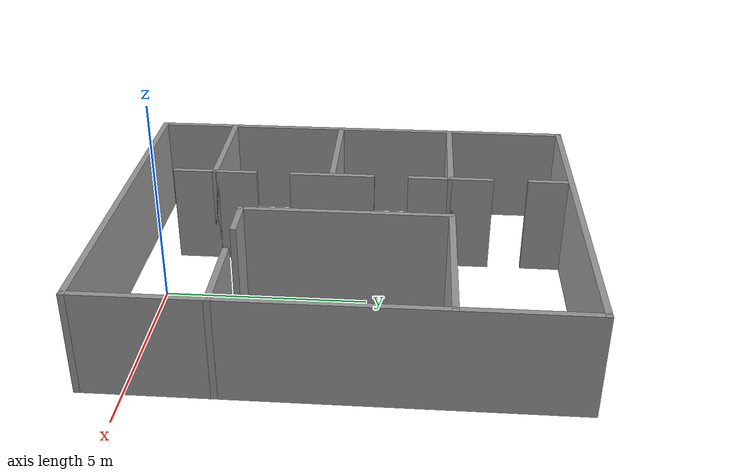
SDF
<?xml version='1.0'?>
<sdf version='1.7'>
  <model name='myRoom'>
    <pose>-0.5 4.5 0 0 -0 0</pose>
    <link name='Wall_0'>
      <collision name='Wall_0_Collision'>
        <geometry>
          <box>
            <size>11.15 0.15 2.5</size>
          </box>
        </geometry>
        <pose>0 0 1.25 0 -0 0</pose>
      </collision>
      <visual name='Wall_0_Visual'>
        <pose>0 0 1.25 0 -0 0</pose>
        <geometry>
          <box>
            <size>11.15 0.15 2.5</size>
          </box>
        </geometry>
        <material>
          <script>
            <uri>file://media/materials/scripts/gazebo.material</uri>
            <name>Gazebo/Grey</name>
          </script>
          <ambient>1 1 1 1</ambient>
        </material>
        <meta>
          <layer>0</layer>
        </meta>
      </visual>
      <pose>-4.5 -0 0 0 -0 1.5708</pose>
    </link>
    <link name='Wall_15'>
      <collision name='Wall_15_Collision'>
        <geometry>
          <box>
            <size>5.15 0.15 2.5</size>
          </box>
        </geometry>
        <pose>0 0 1.25 0 -0 0</pose>
      </collision>
      <visual name='Wall_15_Visual'>
        <pose>0 0 1.25 0 -0 0</pose>
        <geometry>
          <box>
            <size>5.15 0.15 2.5</size>
          </box>
        </geometry>
        <material>
          <script>
            <uri>file://media/materials/scripts/gazebo.material</uri>
            <name>Gazebo/Grey</name>
          </script>
          <ambient>1 1 1 1</ambient>
        </material>
        <meta>
          <layer>0</layer>
        </meta>
      </visual>
      <pose>0.5 -0 0 0 -0 -1.5708</pose>
    </link>
    <link name='Wall_17'>
      <collision name='Wall_17_Collision'>
        <geometry>
          <box>
            <size>1.15 0.15 2.5</size>
          </box>
        </geometry>
        <pose>0 0 1.25 0 -0 0</pose>
      </collision>
      <visual name='Wall_17_Visual'>
        <pose>0 0 1.25 0 -0 0</pose>
        <geometry>
          <box>
            <size>1.15 0.15 2.5</size>
          </box>
        </geometry>
        <material>
          <script>
            <uri>file://media/materials/scripts/gazebo.material</uri>
            <name>Gazebo/Grey</name>
          </script>
          <ambient>1 1 1 1</ambient>
        </material>
        <meta>
          <layer>0</layer>
        </meta>
      </visual>
      <pose>-1.5 5 0 0 -0 -1.5708</pose>
    </link>
    <link name='Wall_19'>
      <collision name='Wall_19_Collision'>
        <geometry>
          <box>
            <size>3.15 0.15 2.5</size>
          </box>
        </geometry>
        <pose>0 0 1.25 0 -0 0</pose>
      </collision>
      <visual name='Wall_19_Visual'>
        <pose>0 0 1.25 0 -0 0</pose>
        <geometry>
          <box>
            <size>3.15 0.15 2.5</size>
          </box>
        </geometry>
        <material>
          <script>
            <uri>file://media/materials/scripts/gazebo.material</uri>
            <name>Gazebo/Grey</name>
          </script>
          <ambient>1 1 1 1</ambient>
        </material>
        <meta>
          <layer>0</layer>
        </meta>
      </visual>
      <pose>-3 2.5 0 0 -0 0</pose>
    </link>
    <link name='Wall_2'>
      <collision name='Wall_2_Collision'>
        <geometry>
          <box>
            <size>9.15 0.15 2.5</size>
          </box>
        </geometry>
        <pose>0 0 1.25 0 -0 0</pose>
      </collision>
      <visual name='Wall_2_Visual'>
        <pose>0 0 1.25 0 -0 0</pose>
        <geometry>
          <box>
            <size>9.15 0.15 2.5</size>
          </box>
        </geometry>
        <material>
          <script>
            <uri>file://media/materials/scripts/gazebo.material</uri>
            <name>Gazebo/Grey</name>
          </script>
          <ambient>1 1 1 1</ambient>
        </material>
        <meta>
          <layer>0</layer>
        </meta>
      </visual>
      <pose>0 5.5 0 0 -0 0</pose>
    </link>
    <link name='Wall_21'>
      <collision name='Wall_21_Collision'>
        <geometry>
          <box>
            <size>1.15 0.15 2.5</size>
          </box>
        </geometry>
        <pose>0 0 1.25 0 -0 0</pose>
      </collision>
      <visual name='Wall_21_Visual'>
        <pose>0 0 1.25 0 -0 0</pose>
        <geometry>
          <box>
            <size>1.15 0.15 2.5</size>
          </box>
        </geometry>
        <material>
          <script>
            <uri>file://media/materials/scripts/gazebo.material</uri>
            <name>Gazebo/Grey</name>
          </script>
          <ambient>1 1 1 1</ambient>
        </material>
        <meta>
          <layer>0</layer>
        </meta>
      </visual>
      <pose>1 -2.5 0 0 -0 0</pose>
    </link>
    <link name='Wall_23'>
      <collision name='Wall_23_Collision'>
        <geometry>
          <box>
            <size>2.15 0.15 2.5</size>
          </box>
        </geometry>
        <pose>0 0 1.25 0 -0 0</pose>
      </collision>
      <visual name='Wall_23_Visual'>
        <pose>0 0 1.25 0 -0 0</pose>
        <geometry>
          <box>
            <size>2.15 0.15 2.5</size>
          </box>
        </geometry>
        <material>
          <script>
            <uri>file://media/materials/scripts/gazebo.material</uri>
            <name>Gazebo/Grey</name>
          </script>
          <ambient>1 1 1 1</ambient>
        </material>
        <meta>
          <layer>0</layer>
        </meta>
      </visual>
      <pose>3.5 -2.5 0 0 -0 3.14159</pose>
    </link>
    <link name='Wall_25'>
      <collision name='Wall_25_Collision'>
        <geometry>
          <box>
            <size>2.15 0.15 2.5</size>
          </box>
        </geometry>
        <pose>0 0 1.25 0 -0 0</pose>
      </collision>
      <visual name='Wall_25_Visual'>
        <pose>0 0 1.25 0 -0 0</pose>
        <geometry>
          <box>
            <size>2.15 0.15 2.5</size>
          </box>
        </geometry>
        <material>
          <script>
            <uri>file://media/materials/scripts/gazebo.material</uri>
            <name>Gazebo/Grey</name>
          </script>
          <ambient>1 1 1 1</ambient>
        </material>
        <meta>
          <layer>0</layer>
        </meta>
      </visual>
      <pose>-1.5 2.5 0 0 -0 -1.5708</pose>
    </link>
    <link name='Wall_27'>
      <collision name='Wall_27_Collision'>
        <geometry>
          <box>
            <size>3.15 0.15 2.5</size>
          </box>
        </geometry>
        <pose>0 0 1.25 0 -0 0</pose>
      </collision>
      <visual name='Wall_27_Visual'>
        <pose>0 0 1.25 0 -0 0</pose>
        <geometry>
          <box>
            <size>3.15 0.15 2.5</size>
          </box>
        </geometry>
        <material>
          <script>
            <uri>file://media/materials/scripts/gazebo.material</uri>
            <name>Gazebo/Grey</name>
          </script>
          <ambient>1 1 1 1</ambient>
        </material>
        <meta>
          <layer>0</layer>
        </meta>
      </visual>
      <pose>-3 -0.5 0 0 -0 0</pose>
    </link>
    <link name='Wall_29'>
      <collision name='Wall_29_Collision'>
        <geometry>
          <box>
            <size>2.15 0.15 2.5</size>
          </box>
        </geometry>
        <pose>0 0 1.25 0 -0 0</pose>
      </collision>
      <visual name='Wall_29_Visual'>
        <pose>0 0 1.25 0 -0 0</pose>
        <geometry>
          <box>
            <size>2.15 0.15 2.5</size>
          </box>
        </geometry>
        <material>
          <script>
            <uri>file://media/materials/scripts/gazebo.material</uri>
            <name>Gazebo/Grey</name>
          </script>
          <ambient>1 1 1 1</ambient>
        </material>
        <meta>
          <layer>0</layer>
        </meta>
      </visual>
      <pose>-1.5 -0.5 0 0 -0 -1.5708</pose>
    </link>
    <link name='Wall_31'>
      <collision name='Wall_31_Collision'>
        <geometry>
          <box>
            <size>3.15 0.15 2.5</size>
          </box>
        </geometry>
        <pose>0 0 1.25 0 -0 0</pose>
      </collision>
      <visual name='Wall_31_Visual'>
        <pose>0 0 1.25 0 -0 0</pose>
        <geometry>
          <box>
            <size>3.15 0.15 2.5</size>
          </box>
        </geometry>
        <material>
          <script>
            <uri>file://media/materials/scripts/gazebo.material</uri>
            <name>Gazebo/Grey</name>
          </script>
          <ambient>1 1 1 1</ambient>
        </material>
        <meta>
          <layer>0</layer>
        </meta>
      </visual>
      <pose>-3 -3.5 0 0 -0 0</pose>
    </link>
    <link name='Wall_33'>
      <collision name='Wall_33_Collision'>
        <geometry>
          <box>
            <size>2.15 0.15 2.5</size>
          </box>
        </geometry>
        <pose>0 0 1.25 0 -0 0</pose>
      </collision>
      <visual name='Wall_33_Visual'>
        <pose>0 0 1.25 0 -0 0</pose>
        <geometry>
          <box>
            <size>2.15 0.15 2.5</size>
          </box>
        </geometry>
        <material>
          <script>
            <uri>file://media/materials/scripts/gazebo.material</uri>
            <name>Gazebo/Grey</name>
          </script>
          <ambient>1 1 1 1</ambient>
        </material>
        <meta>
          <layer>0</layer>
        </meta>
      </visual>
      <pose>-1.5 -3.5 0 0 -0 -1.5708</pose>
    </link>
    <link name='Wall_4'>
      <collision name='Wall_4_Collision'>
        <geometry>
          <box>
            <size>11.15 0.15 2.5</size>
          </box>
        </geometry>
        <pose>0 0 1.25 0 -0 0</pose>
      </collision>
      <visual name='Wall_4_Visual'>
        <pose>0 0 1.25 0 -0 0</pose>
        <geometry>
          <box>
            <size>11.15 0.15 2.5</size>
          </box>
        </geometry>
        <material>
          <script>
            <uri>file://media/materials/scripts/gazebo.material</uri>
            <name>Gazebo/Grey</name>
          </script>
          <ambient>1 1 1 1</ambient>
        </material>
        <meta>
          <layer>0</layer>
        </meta>
      </visual>
      <pose>4.5 -0 0 0 -0 -1.5708</pose>
    </link>
    <link name='Wall_6'>
      <collision name='Wall_6_Collision'>
        <geometry>
          <box>
            <size>4.15 0.15 2.5</size>
          </box>
        </geometry>
        <pose>0 0 1.25 0 -0 0</pose>
      </collision>
      <visual name='Wall_6_Visual'>
        <pose>0 0 1.25 0 -0 0</pose>
        <geometry>
          <box>
            <size>4.15 0.15 2.5</size>
          </box>
        </geometry>
        <material>
          <script>
            <uri>file://media/materials/scripts/gazebo.material</uri>
            <name>Gazebo/Grey</name>
          </script>
          <ambient>1 1 1 1</ambient>
        </material>
        <meta>
          <layer>0</layer>
        </meta>
      </visual>
      <pose>2.5 2.5 0 0 -0 3.14159</pose>
    </link>
    <link name='Wall_8'>
      <collision name='Wall_8_Collision'>
        <geometry>
          <box>
            <size>9.15 0.15 2.5</size>
          </box>
        </geometry>
        <pose>0 0 1.25 0 -0 0</pose>
      </collision>
      <visual name='Wall_8_Visual'>
        <pose>0 0 1.25 0 -0 0</pose>
        <geometry>
          <box>
            <size>9.15 0.15 2.5</size>
          </box>
        </geometry>
        <material>
          <script>
            <uri>file://media/materials/scripts/gazebo.material</uri>
            <name>Gazebo/Grey</name>
          </script>
          <ambient>1 1 1 1</ambient>
        </material>
        <meta>
          <layer>0</layer>
        </meta>
      </visual>
      <pose>0 -5.5 0 0 -0 0</pose>
    </link>
    <static>1</static>
  </model>
</sdf>
